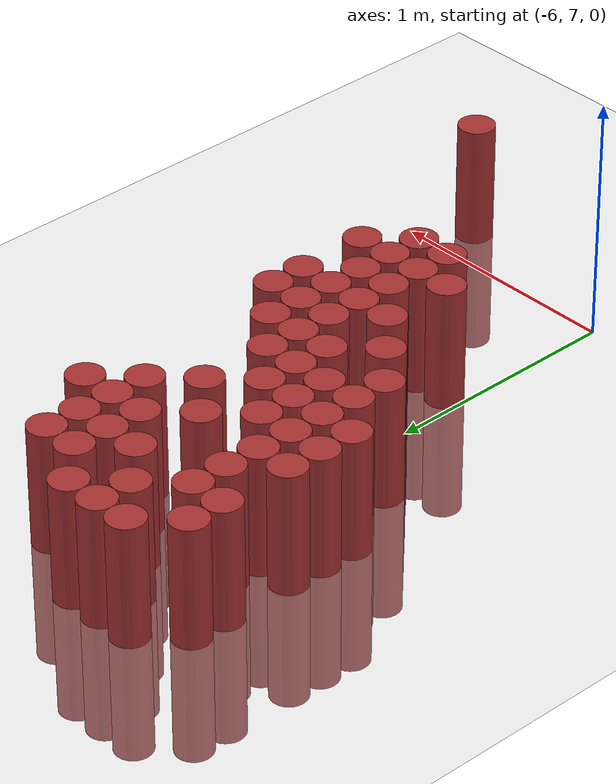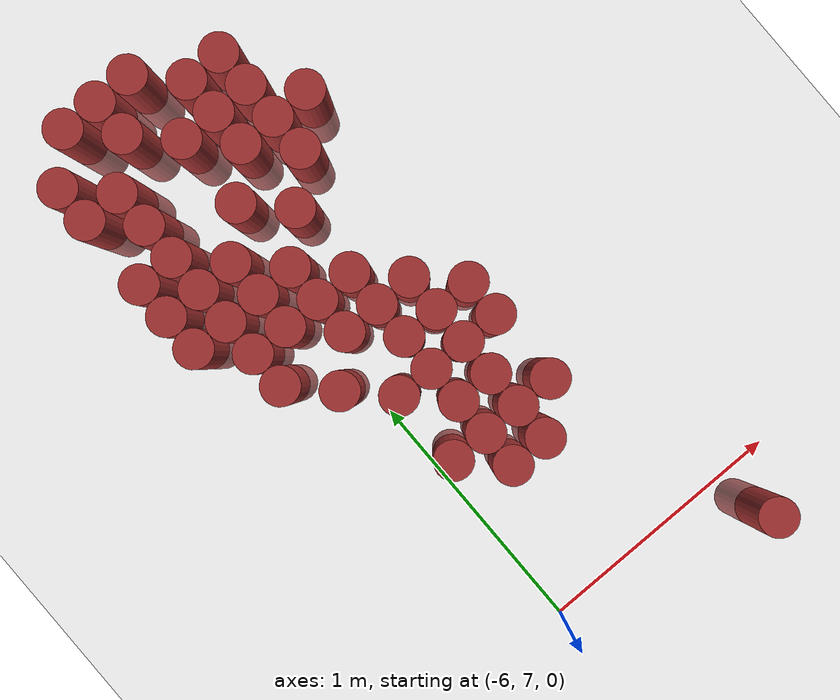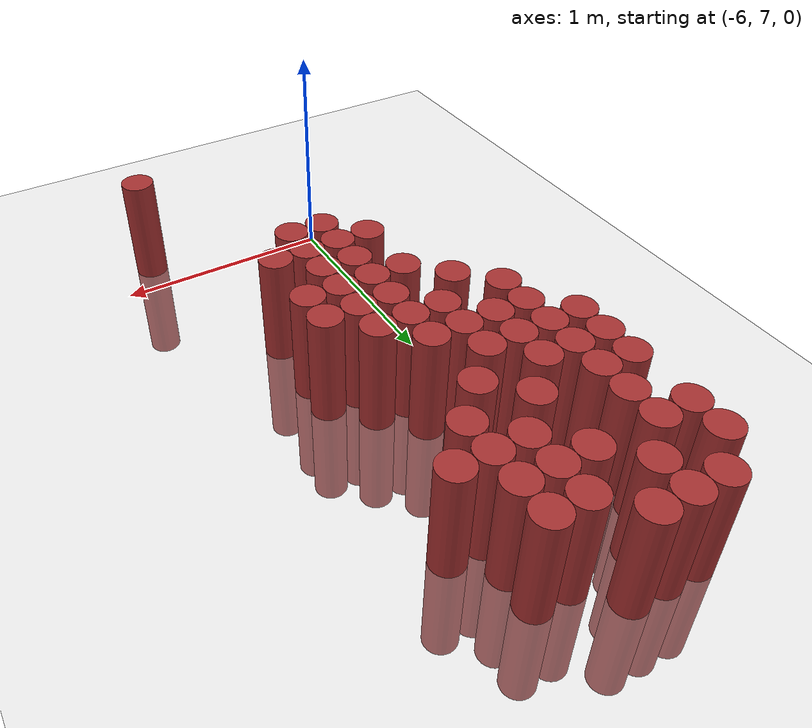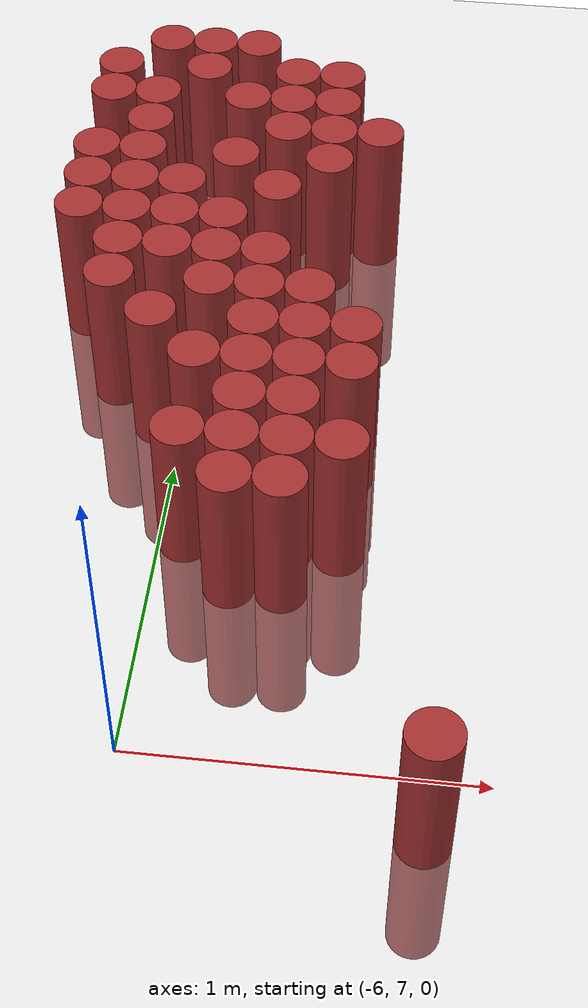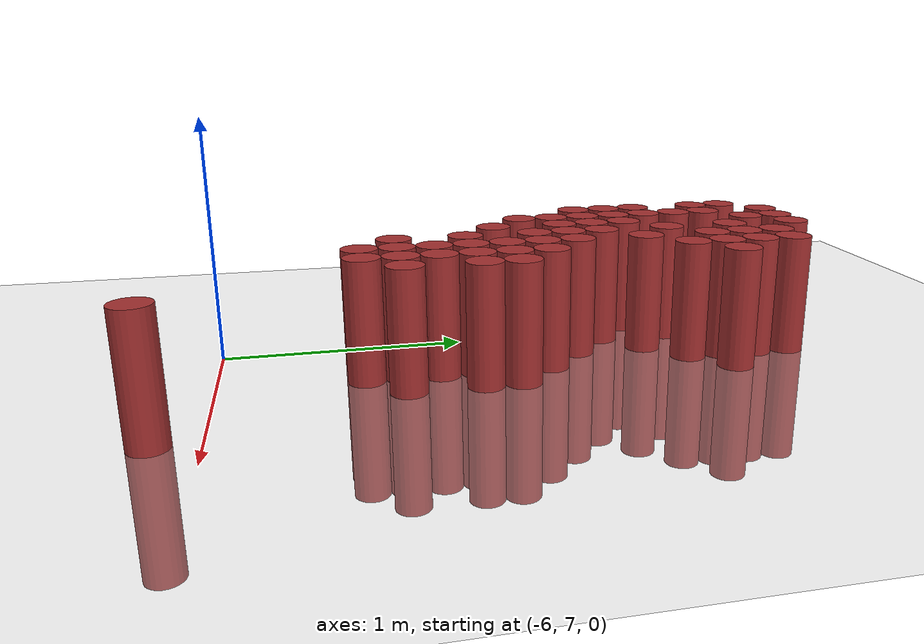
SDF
<sdf version="1.6">
 <world name="default">
  <model name="ground_plane">
   <static>1</static>
   <link name="link">
    <collision name="collision">
     <geometry><plane><normal>0 0 1</normal><size>100 100</size></plane></geometry>
     <surface><friction><ode><mu>100</mu><mu2>50</mu2></ode></friction></surface>
    </collision>
    <visual name="visual">
     <cast_shadows>0</cast_shadows>
     <geometry><plane><normal>0 0 1</normal><size>100 100</size></plane></geometry>
     <material>
      <script><uri>file://media/materials/scripts/gazebo.material</uri><name>Gazebo/Grey</name></script>
     </material>
    </visual>
   </link>
  </model>
  <model name="unit_cylinder_217">
   <static>1</static>
   <pose>-6.375000 8.625000 0.000000 0.000000 0.000000 0.000000</pose>
   <link name="link">
    <inertial>
     <mass>1</mass>
     <inertia><ixx>0.145833</ixx><ixy>0</ixy><ixz>0</ixz><iyy>0.145833</iyy><iyz>0</iyz><izz>0.125</izz></inertia>
    </inertial>
    <collision name="collision">
     <geometry><cylinder><radius>0.075000</radius><length>1</length></cylinder></geometry>
    </collision>
    <visual name="visual">
     <geometry><cylinder><radius>0.075000</radius><length>1</length></cylinder></geometry>
     <material>
      <ambient>0.648000 0.192000 0.192000 1</ambient>
      <diffuse>0.648000 0.192000 0.192000 1</diffuse>
     </material>
     <material>
      <script><name>Gazebo/Grey</name><uri>file://media/materials/scripts/gazebo.material</uri></script>
     </material>
    </visual>
   </link>
  </model>
  <model name="unit_cylinder_218">
   <static>1</static>
   <pose>-6.375000 8.775000 0.000000 0.000000 0.000000 0.000000</pose>
   <link name="link">
    <inertial>
     <mass>1</mass>
     <inertia><ixx>0.145833</ixx><ixy>0</ixy><ixz>0</ixz><iyy>0.145833</iyy><iyz>0</iyz><izz>0.125</izz></inertia>
    </inertial>
    <collision name="collision">
     <geometry><cylinder><radius>0.075000</radius><length>1</length></cylinder></geometry>
    </collision>
    <visual name="visual">
     <geometry><cylinder><radius>0.075000</radius><length>1</length></cylinder></geometry>
     <material>
      <ambient>0.648000 0.192000 0.192000 1</ambient>
      <diffuse>0.648000 0.192000 0.192000 1</diffuse>
     </material>
     <material>
      <script><name>Gazebo/Grey</name><uri>file://media/materials/scripts/gazebo.material</uri></script>
     </material>
    </visual>
   </link>
  </model>
  <model name="unit_cylinder_219">
   <static>1</static>
   <pose>-6.375000 8.925000 0.000000 0.000000 0.000000 0.000000</pose>
   <link name="link">
    <inertial>
     <mass>1</mass>
     <inertia><ixx>0.145833</ixx><ixy>0</ixy><ixz>0</ixz><iyy>0.145833</iyy><iyz>0</iyz><izz>0.125</izz></inertia>
    </inertial>
    <collision name="collision">
     <geometry><cylinder><radius>0.075000</radius><length>1</length></cylinder></geometry>
    </collision>
    <visual name="visual">
     <geometry><cylinder><radius>0.075000</radius><length>1</length></cylinder></geometry>
     <material>
      <ambient>0.648000 0.192000 0.192000 1</ambient>
      <diffuse>0.648000 0.192000 0.192000 1</diffuse>
     </material>
     <material>
      <script><name>Gazebo/Grey</name><uri>file://media/materials/scripts/gazebo.material</uri></script>
     </material>
    </visual>
   </link>
  </model>
  <model name="unit_cylinder_220">
   <static>1</static>
   <pose>-6.375000 9.225000 0.000000 0.000000 0.000000 0.000000</pose>
   <link name="link">
    <inertial>
     <mass>1</mass>
     <inertia><ixx>0.145833</ixx><ixy>0</ixy><ixz>0</ixz><iyy>0.145833</iyy><iyz>0</iyz><izz>0.125</izz></inertia>
    </inertial>
    <collision name="collision">
     <geometry><cylinder><radius>0.075000</radius><length>1</length></cylinder></geometry>
    </collision>
    <visual name="visual">
     <geometry><cylinder><radius>0.075000</radius><length>1</length></cylinder></geometry>
     <material>
      <ambient>0.648000 0.192000 0.192000 1</ambient>
      <diffuse>0.648000 0.192000 0.192000 1</diffuse>
     </material>
     <material>
      <script><name>Gazebo/Grey</name><uri>file://media/materials/scripts/gazebo.material</uri></script>
     </material>
    </visual>
   </link>
  </model>
  <model name="unit_cylinder_221">
   <static>1</static>
   <pose>-6.375000 9.375000 0.000000 0.000000 0.000000 0.000000</pose>
   <link name="link">
    <inertial>
     <mass>1</mass>
     <inertia><ixx>0.145833</ixx><ixy>0</ixy><ixz>0</ixz><iyy>0.145833</iyy><iyz>0</iyz><izz>0.125</izz></inertia>
    </inertial>
    <collision name="collision">
     <geometry><cylinder><radius>0.075000</radius><length>1</length></cylinder></geometry>
    </collision>
    <visual name="visual">
     <geometry><cylinder><radius>0.075000</radius><length>1</length></cylinder></geometry>
     <material>
      <ambient>0.648000 0.192000 0.192000 1</ambient>
      <diffuse>0.648000 0.192000 0.192000 1</diffuse>
     </material>
     <material>
      <script><name>Gazebo/Grey</name><uri>file://media/materials/scripts/gazebo.material</uri></script>
     </material>
    </visual>
   </link>
  </model>
  <model name="unit_cylinder_224">
   <static>1</static>
   <pose>-6.225000 8.325000 0.000000 0.000000 0.000000 0.000000</pose>
   <link name="link">
    <inertial>
     <mass>1</mass>
     <inertia><ixx>0.145833</ixx><ixy>0</ixy><ixz>0</ixz><iyy>0.145833</iyy><iyz>0</iyz><izz>0.125</izz></inertia>
    </inertial>
    <collision name="collision">
     <geometry><cylinder><radius>0.075000</radius><length>1</length></cylinder></geometry>
    </collision>
    <visual name="visual">
     <geometry><cylinder><radius>0.075000</radius><length>1</length></cylinder></geometry>
     <material>
      <ambient>0.648000 0.192000 0.192000 1</ambient>
      <diffuse>0.648000 0.192000 0.192000 1</diffuse>
     </material>
     <material>
      <script><name>Gazebo/Grey</name><uri>file://media/materials/scripts/gazebo.material</uri></script>
     </material>
    </visual>
   </link>
  </model>
  <model name="unit_cylinder_225">
   <static>1</static>
   <pose>-6.225000 8.475000 0.000000 0.000000 0.000000 0.000000</pose>
   <link name="link">
    <inertial>
     <mass>1</mass>
     <inertia><ixx>0.145833</ixx><ixy>0</ixy><ixz>0</ixz><iyy>0.145833</iyy><iyz>0</iyz><izz>0.125</izz></inertia>
    </inertial>
    <collision name="collision">
     <geometry><cylinder><radius>0.075000</radius><length>1</length></cylinder></geometry>
    </collision>
    <visual name="visual">
     <geometry><cylinder><radius>0.075000</radius><length>1</length></cylinder></geometry>
     <material>
      <ambient>0.648000 0.192000 0.192000 1</ambient>
      <diffuse>0.648000 0.192000 0.192000 1</diffuse>
     </material>
     <material>
      <script><name>Gazebo/Grey</name><uri>file://media/materials/scripts/gazebo.material</uri></script>
     </material>
    </visual>
   </link>
  </model>
  <model name="unit_cylinder_226">
   <static>1</static>
   <pose>-6.225000 8.625000 0.000000 0.000000 0.000000 0.000000</pose>
   <link name="link">
    <inertial>
     <mass>1</mass>
     <inertia><ixx>0.145833</ixx><ixy>0</ixy><ixz>0</ixz><iyy>0.145833</iyy><iyz>0</iyz><izz>0.125</izz></inertia>
    </inertial>
    <collision name="collision">
     <geometry><cylinder><radius>0.075000</radius><length>1</length></cylinder></geometry>
    </collision>
    <visual name="visual">
     <geometry><cylinder><radius>0.075000</radius><length>1</length></cylinder></geometry>
     <material>
      <ambient>0.648000 0.192000 0.192000 1</ambient>
      <diffuse>0.648000 0.192000 0.192000 1</diffuse>
     </material>
     <material>
      <script><name>Gazebo/Grey</name><uri>file://media/materials/scripts/gazebo.material</uri></script>
     </material>
    </visual>
   </link>
  </model>
  <model name="unit_cylinder_227">
   <static>1</static>
   <pose>-6.225000 8.775000 0.000000 0.000000 0.000000 0.000000</pose>
   <link name="link">
    <inertial>
     <mass>1</mass>
     <inertia><ixx>0.145833</ixx><ixy>0</ixy><ixz>0</ixz><iyy>0.145833</iyy><iyz>0</iyz><izz>0.125</izz></inertia>
    </inertial>
    <collision name="collision">
     <geometry><cylinder><radius>0.075000</radius><length>1</length></cylinder></geometry>
    </collision>
    <visual name="visual">
     <geometry><cylinder><radius>0.075000</radius><length>1</length></cylinder></geometry>
     <material>
      <ambient>0.648000 0.192000 0.192000 1</ambient>
      <diffuse>0.648000 0.192000 0.192000 1</diffuse>
     </material>
     <material>
      <script><name>Gazebo/Grey</name><uri>file://media/materials/scripts/gazebo.material</uri></script>
     </material>
    </visual>
   </link>
  </model>
  <model name="unit_cylinder_228">
   <static>1</static>
   <pose>-6.225000 8.925000 0.000000 0.000000 0.000000 0.000000</pose>
   <link name="link">
    <inertial>
     <mass>1</mass>
     <inertia><ixx>0.145833</ixx><ixy>0</ixy><ixz>0</ixz><iyy>0.145833</iyy><iyz>0</iyz><izz>0.125</izz></inertia>
    </inertial>
    <collision name="collision">
     <geometry><cylinder><radius>0.075000</radius><length>1</length></cylinder></geometry>
    </collision>
    <visual name="visual">
     <geometry><cylinder><radius>0.075000</radius><length>1</length></cylinder></geometry>
     <material>
      <ambient>0.648000 0.192000 0.192000 1</ambient>
      <diffuse>0.648000 0.192000 0.192000 1</diffuse>
     </material>
     <material>
      <script><name>Gazebo/Grey</name><uri>file://media/materials/scripts/gazebo.material</uri></script>
     </material>
    </visual>
   </link>
  </model>
  <model name="unit_cylinder_229">
   <static>1</static>
   <pose>-6.225000 9.075000 0.000000 0.000000 0.000000 0.000000</pose>
   <link name="link">
    <inertial>
     <mass>1</mass>
     <inertia><ixx>0.145833</ixx><ixy>0</ixy><ixz>0</ixz><iyy>0.145833</iyy><iyz>0</iyz><izz>0.125</izz></inertia>
    </inertial>
    <collision name="collision">
     <geometry><cylinder><radius>0.075000</radius><length>1</length></cylinder></geometry>
    </collision>
    <visual name="visual">
     <geometry><cylinder><radius>0.075000</radius><length>1</length></cylinder></geometry>
     <material>
      <ambient>0.648000 0.192000 0.192000 1</ambient>
      <diffuse>0.648000 0.192000 0.192000 1</diffuse>
     </material>
     <material>
      <script><name>Gazebo/Grey</name><uri>file://media/materials/scripts/gazebo.material</uri></script>
     </material>
    </visual>
   </link>
  </model>
  <model name="unit_cylinder_230">
   <static>1</static>
   <pose>-6.225000 9.225000 0.000000 0.000000 0.000000 0.000000</pose>
   <link name="link">
    <inertial>
     <mass>1</mass>
     <inertia><ixx>0.145833</ixx><ixy>0</ixy><ixz>0</ixz><iyy>0.145833</iyy><iyz>0</iyz><izz>0.125</izz></inertia>
    </inertial>
    <collision name="collision">
     <geometry><cylinder><radius>0.075000</radius><length>1</length></cylinder></geometry>
    </collision>
    <visual name="visual">
     <geometry><cylinder><radius>0.075000</radius><length>1</length></cylinder></geometry>
     <material>
      <ambient>0.648000 0.192000 0.192000 1</ambient>
      <diffuse>0.648000 0.192000 0.192000 1</diffuse>
     </material>
     <material>
      <script><name>Gazebo/Grey</name><uri>file://media/materials/scripts/gazebo.material</uri></script>
     </material>
    </visual>
   </link>
  </model>
  <model name="unit_cylinder_231">
   <static>1</static>
   <pose>-6.225000 9.525000 0.000000 0.000000 0.000000 0.000000</pose>
   <link name="link">
    <inertial>
     <mass>1</mass>
     <inertia><ixx>0.145833</ixx><ixy>0</ixy><ixz>0</ixz><iyy>0.145833</iyy><iyz>0</iyz><izz>0.125</izz></inertia>
    </inertial>
    <collision name="collision">
     <geometry><cylinder><radius>0.075000</radius><length>1</length></cylinder></geometry>
    </collision>
    <visual name="visual">
     <geometry><cylinder><radius>0.075000</radius><length>1</length></cylinder></geometry>
     <material>
      <ambient>0.648000 0.192000 0.192000 1</ambient>
      <diffuse>0.648000 0.192000 0.192000 1</diffuse>
     </material>
     <material>
      <script><name>Gazebo/Grey</name><uri>file://media/materials/scripts/gazebo.material</uri></script>
     </material>
    </visual>
   </link>
  </model>
  <model name="unit_cylinder_234">
   <static>1</static>
   <pose>-6.075000 8.175000 0.000000 0.000000 0.000000 0.000000</pose>
   <link name="link">
    <inertial>
     <mass>1</mass>
     <inertia><ixx>0.145833</ixx><ixy>0</ixy><ixz>0</ixz><iyy>0.145833</iyy><iyz>0</iyz><izz>0.125</izz></inertia>
    </inertial>
    <collision name="collision">
     <geometry><cylinder><radius>0.075000</radius><length>1</length></cylinder></geometry>
    </collision>
    <visual name="visual">
     <geometry><cylinder><radius>0.075000</radius><length>1</length></cylinder></geometry>
     <material>
      <ambient>0.648000 0.192000 0.192000 1</ambient>
      <diffuse>0.648000 0.192000 0.192000 1</diffuse>
     </material>
     <material>
      <script><name>Gazebo/Grey</name><uri>file://media/materials/scripts/gazebo.material</uri></script>
     </material>
    </visual>
   </link>
  </model>
  <model name="unit_cylinder_235">
   <static>1</static>
   <pose>-6.075000 8.475000 0.000000 0.000000 0.000000 0.000000</pose>
   <link name="link">
    <inertial>
     <mass>1</mass>
     <inertia><ixx>0.145833</ixx><ixy>0</ixy><ixz>0</ixz><iyy>0.145833</iyy><iyz>0</iyz><izz>0.125</izz></inertia>
    </inertial>
    <collision name="collision">
     <geometry><cylinder><radius>0.075000</radius><length>1</length></cylinder></geometry>
    </collision>
    <visual name="visual">
     <geometry><cylinder><radius>0.075000</radius><length>1</length></cylinder></geometry>
     <material>
      <ambient>0.648000 0.192000 0.192000 1</ambient>
      <diffuse>0.648000 0.192000 0.192000 1</diffuse>
     </material>
     <material>
      <script><name>Gazebo/Grey</name><uri>file://media/materials/scripts/gazebo.material</uri></script>
     </material>
    </visual>
   </link>
  </model>
  <model name="unit_cylinder_236">
   <static>1</static>
   <pose>-6.075000 8.625000 0.000000 0.000000 0.000000 0.000000</pose>
   <link name="link">
    <inertial>
     <mass>1</mass>
     <inertia><ixx>0.145833</ixx><ixy>0</ixy><ixz>0</ixz><iyy>0.145833</iyy><iyz>0</iyz><izz>0.125</izz></inertia>
    </inertial>
    <collision name="collision">
     <geometry><cylinder><radius>0.075000</radius><length>1</length></cylinder></geometry>
    </collision>
    <visual name="visual">
     <geometry><cylinder><radius>0.075000</radius><length>1</length></cylinder></geometry>
     <material>
      <ambient>0.648000 0.192000 0.192000 1</ambient>
      <diffuse>0.648000 0.192000 0.192000 1</diffuse>
     </material>
     <material>
      <script><name>Gazebo/Grey</name><uri>file://media/materials/scripts/gazebo.material</uri></script>
     </material>
    </visual>
   </link>
  </model>
  <model name="unit_cylinder_237">
   <static>1</static>
   <pose>-6.075000 8.775000 0.000000 0.000000 0.000000 0.000000</pose>
   <link name="link">
    <inertial>
     <mass>1</mass>
     <inertia><ixx>0.145833</ixx><ixy>0</ixy><ixz>0</ixz><iyy>0.145833</iyy><iyz>0</iyz><izz>0.125</izz></inertia>
    </inertial>
    <collision name="collision">
     <geometry><cylinder><radius>0.075000</radius><length>1</length></cylinder></geometry>
    </collision>
    <visual name="visual">
     <geometry><cylinder><radius>0.075000</radius><length>1</length></cylinder></geometry>
     <material>
      <ambient>0.648000 0.192000 0.192000 1</ambient>
      <diffuse>0.648000 0.192000 0.192000 1</diffuse>
     </material>
     <material>
      <script><name>Gazebo/Grey</name><uri>file://media/materials/scripts/gazebo.material</uri></script>
     </material>
    </visual>
   </link>
  </model>
  <model name="unit_cylinder_238">
   <static>1</static>
   <pose>-6.075000 9.375000 0.000000 0.000000 0.000000 0.000000</pose>
   <link name="link">
    <inertial>
     <mass>1</mass>
     <inertia><ixx>0.145833</ixx><ixy>0</ixy><ixz>0</ixz><iyy>0.145833</iyy><iyz>0</iyz><izz>0.125</izz></inertia>
    </inertial>
    <collision name="collision">
     <geometry><cylinder><radius>0.075000</radius><length>1</length></cylinder></geometry>
    </collision>
    <visual name="visual">
     <geometry><cylinder><radius>0.075000</radius><length>1</length></cylinder></geometry>
     <material>
      <ambient>0.648000 0.192000 0.192000 1</ambient>
      <diffuse>0.648000 0.192000 0.192000 1</diffuse>
     </material>
     <material>
      <script><name>Gazebo/Grey</name><uri>file://media/materials/scripts/gazebo.material</uri></script>
     </material>
    </visual>
   </link>
  </model>
  <model name="unit_cylinder_239">
   <static>1</static>
   <pose>-6.075000 9.525000 0.000000 0.000000 0.000000 0.000000</pose>
   <link name="link">
    <inertial>
     <mass>1</mass>
     <inertia><ixx>0.145833</ixx><ixy>0</ixy><ixz>0</ixz><iyy>0.145833</iyy><iyz>0</iyz><izz>0.125</izz></inertia>
    </inertial>
    <collision name="collision">
     <geometry><cylinder><radius>0.075000</radius><length>1</length></cylinder></geometry>
    </collision>
    <visual name="visual">
     <geometry><cylinder><radius>0.075000</radius><length>1</length></cylinder></geometry>
     <material>
      <ambient>0.648000 0.192000 0.192000 1</ambient>
      <diffuse>0.648000 0.192000 0.192000 1</diffuse>
     </material>
     <material>
      <script><name>Gazebo/Grey</name><uri>file://media/materials/scripts/gazebo.material</uri></script>
     </material>
    </visual>
   </link>
  </model>
  <model name="unit_cylinder_242">
   <static>1</static>
   <pose>-5.925000 7.725000 0.000000 0.000000 0.000000 0.000000</pose>
   <link name="link">
    <inertial>
     <mass>1</mass>
     <inertia><ixx>0.145833</ixx><ixy>0</ixy><ixz>0</ixz><iyy>0.145833</iyy><iyz>0</iyz><izz>0.125</izz></inertia>
    </inertial>
    <collision name="collision">
     <geometry><cylinder><radius>0.075000</radius><length>1</length></cylinder></geometry>
    </collision>
    <visual name="visual">
     <geometry><cylinder><radius>0.075000</radius><length>1</length></cylinder></geometry>
     <material>
      <ambient>0.648000 0.192000 0.192000 1</ambient>
      <diffuse>0.648000 0.192000 0.192000 1</diffuse>
     </material>
     <material>
      <script><name>Gazebo/Grey</name><uri>file://media/materials/scripts/gazebo.material</uri></script>
     </material>
    </visual>
   </link>
  </model>
  <model name="unit_cylinder_243">
   <static>1</static>
   <pose>-5.925000 8.025000 0.000000 0.000000 0.000000 0.000000</pose>
   <link name="link">
    <inertial>
     <mass>1</mass>
     <inertia><ixx>0.145833</ixx><ixy>0</ixy><ixz>0</ixz><iyy>0.145833</iyy><iyz>0</iyz><izz>0.125</izz></inertia>
    </inertial>
    <collision name="collision">
     <geometry><cylinder><radius>0.075000</radius><length>1</length></cylinder></geometry>
    </collision>
    <visual name="visual">
     <geometry><cylinder><radius>0.075000</radius><length>1</length></cylinder></geometry>
     <material>
      <ambient>0.648000 0.192000 0.192000 1</ambient>
      <diffuse>0.648000 0.192000 0.192000 1</diffuse>
     </material>
     <material>
      <script><name>Gazebo/Grey</name><uri>file://media/materials/scripts/gazebo.material</uri></script>
     </material>
    </visual>
   </link>
  </model>
  <model name="unit_cylinder_244">
   <static>1</static>
   <pose>-5.925000 8.325000 0.000000 0.000000 0.000000 0.000000</pose>
   <link name="link">
    <inertial>
     <mass>1</mass>
     <inertia><ixx>0.145833</ixx><ixy>0</ixy><ixz>0</ixz><iyy>0.145833</iyy><iyz>0</iyz><izz>0.125</izz></inertia>
    </inertial>
    <collision name="collision">
     <geometry><cylinder><radius>0.075000</radius><length>1</length></cylinder></geometry>
    </collision>
    <visual name="visual">
     <geometry><cylinder><radius>0.075000</radius><length>1</length></cylinder></geometry>
     <material>
      <ambient>0.648000 0.192000 0.192000 1</ambient>
      <diffuse>0.648000 0.192000 0.192000 1</diffuse>
     </material>
     <material>
      <script><name>Gazebo/Grey</name><uri>file://media/materials/scripts/gazebo.material</uri></script>
     </material>
    </visual>
   </link>
  </model>
  <model name="unit_cylinder_245">
   <static>1</static>
   <pose>-5.925000 8.475000 0.000000 0.000000 0.000000 0.000000</pose>
   <link name="link">
    <inertial>
     <mass>1</mass>
     <inertia><ixx>0.145833</ixx><ixy>0</ixy><ixz>0</ixz><iyy>0.145833</iyy><iyz>0</iyz><izz>0.125</izz></inertia>
    </inertial>
    <collision name="collision">
     <geometry><cylinder><radius>0.075000</radius><length>1</length></cylinder></geometry>
    </collision>
    <visual name="visual">
     <geometry><cylinder><radius>0.075000</radius><length>1</length></cylinder></geometry>
     <material>
      <ambient>0.648000 0.192000 0.192000 1</ambient>
      <diffuse>0.648000 0.192000 0.192000 1</diffuse>
     </material>
     <material>
      <script><name>Gazebo/Grey</name><uri>file://media/materials/scripts/gazebo.material</uri></script>
     </material>
    </visual>
   </link>
  </model>
  <model name="unit_cylinder_246">
   <static>1</static>
   <pose>-5.925000 8.625000 0.000000 0.000000 0.000000 0.000000</pose>
   <link name="link">
    <inertial>
     <mass>1</mass>
     <inertia><ixx>0.145833</ixx><ixy>0</ixy><ixz>0</ixz><iyy>0.145833</iyy><iyz>0</iyz><izz>0.125</izz></inertia>
    </inertial>
    <collision name="collision">
     <geometry><cylinder><radius>0.075000</radius><length>1</length></cylinder></geometry>
    </collision>
    <visual name="visual">
     <geometry><cylinder><radius>0.075000</radius><length>1</length></cylinder></geometry>
     <material>
      <ambient>0.648000 0.192000 0.192000 1</ambient>
      <diffuse>0.648000 0.192000 0.192000 1</diffuse>
     </material>
     <material>
      <script><name>Gazebo/Grey</name><uri>file://media/materials/scripts/gazebo.material</uri></script>
     </material>
    </visual>
   </link>
  </model>
  <model name="unit_cylinder_247">
   <static>1</static>
   <pose>-5.925000 8.925000 0.000000 0.000000 0.000000 0.000000</pose>
   <link name="link">
    <inertial>
     <mass>1</mass>
     <inertia><ixx>0.145833</ixx><ixy>0</ixy><ixz>0</ixz><iyy>0.145833</iyy><iyz>0</iyz><izz>0.125</izz></inertia>
    </inertial>
    <collision name="collision">
     <geometry><cylinder><radius>0.075000</radius><length>1</length></cylinder></geometry>
    </collision>
    <visual name="visual">
     <geometry><cylinder><radius>0.075000</radius><length>1</length></cylinder></geometry>
     <material>
      <ambient>0.648000 0.192000 0.192000 1</ambient>
      <diffuse>0.648000 0.192000 0.192000 1</diffuse>
     </material>
     <material>
      <script><name>Gazebo/Grey</name><uri>file://media/materials/scripts/gazebo.material</uri></script>
     </material>
    </visual>
   </link>
  </model>
  <model name="unit_cylinder_248">
   <static>1</static>
   <pose>-5.925000 9.225000 0.000000 0.000000 0.000000 0.000000</pose>
   <link name="link">
    <inertial>
     <mass>1</mass>
     <inertia><ixx>0.145833</ixx><ixy>0</ixy><ixz>0</ixz><iyy>0.145833</iyy><iyz>0</iyz><izz>0.125</izz></inertia>
    </inertial>
    <collision name="collision">
     <geometry><cylinder><radius>0.075000</radius><length>1</length></cylinder></geometry>
    </collision>
    <visual name="visual">
     <geometry><cylinder><radius>0.075000</radius><length>1</length></cylinder></geometry>
     <material>
      <ambient>0.648000 0.192000 0.192000 1</ambient>
      <diffuse>0.648000 0.192000 0.192000 1</diffuse>
     </material>
     <material>
      <script><name>Gazebo/Grey</name><uri>file://media/materials/scripts/gazebo.material</uri></script>
     </material>
    </visual>
   </link>
  </model>
  <model name="unit_cylinder_249">
   <static>1</static>
   <pose>-5.925000 9.525000 0.000000 0.000000 0.000000 0.000000</pose>
   <link name="link">
    <inertial>
     <mass>1</mass>
     <inertia><ixx>0.145833</ixx><ixy>0</ixy><ixz>0</ixz><iyy>0.145833</iyy><iyz>0</iyz><izz>0.125</izz></inertia>
    </inertial>
    <collision name="collision">
     <geometry><cylinder><radius>0.075000</radius><length>1</length></cylinder></geometry>
    </collision>
    <visual name="visual">
     <geometry><cylinder><radius>0.075000</radius><length>1</length></cylinder></geometry>
     <material>
      <ambient>0.648000 0.192000 0.192000 1</ambient>
      <diffuse>0.648000 0.192000 0.192000 1</diffuse>
     </material>
     <material>
      <script><name>Gazebo/Grey</name><uri>file://media/materials/scripts/gazebo.material</uri></script>
     </material>
    </visual>
   </link>
  </model>
  <model name="unit_cylinder_252">
   <static>1</static>
   <pose>-5.775000 7.575000 0.000000 0.000000 0.000000 0.000000</pose>
   <link name="link">
    <inertial>
     <mass>1</mass>
     <inertia><ixx>0.145833</ixx><ixy>0</ixy><ixz>0</ixz><iyy>0.145833</iyy><iyz>0</iyz><izz>0.125</izz></inertia>
    </inertial>
    <collision name="collision">
     <geometry><cylinder><radius>0.075000</radius><length>1</length></cylinder></geometry>
    </collision>
    <visual name="visual">
     <geometry><cylinder><radius>0.075000</radius><length>1</length></cylinder></geometry>
     <material>
      <ambient>0.648000 0.192000 0.192000 1</ambient>
      <diffuse>0.648000 0.192000 0.192000 1</diffuse>
     </material>
     <material>
      <script><name>Gazebo/Grey</name><uri>file://media/materials/scripts/gazebo.material</uri></script>
     </material>
    </visual>
   </link>
  </model>
  <model name="unit_cylinder_253">
   <static>1</static>
   <pose>-5.775000 7.725000 0.000000 0.000000 0.000000 0.000000</pose>
   <link name="link">
    <inertial>
     <mass>1</mass>
     <inertia><ixx>0.145833</ixx><ixy>0</ixy><ixz>0</ixz><iyy>0.145833</iyy><iyz>0</iyz><izz>0.125</izz></inertia>
    </inertial>
    <collision name="collision">
     <geometry><cylinder><radius>0.075000</radius><length>1</length></cylinder></geometry>
    </collision>
    <visual name="visual">
     <geometry><cylinder><radius>0.075000</radius><length>1</length></cylinder></geometry>
     <material>
      <ambient>0.648000 0.192000 0.192000 1</ambient>
      <diffuse>0.648000 0.192000 0.192000 1</diffuse>
     </material>
     <material>
      <script><name>Gazebo/Grey</name><uri>file://media/materials/scripts/gazebo.material</uri></script>
     </material>
    </visual>
   </link>
  </model>
  <model name="unit_cylinder_254">
   <static>1</static>
   <pose>-5.775000 7.875000 0.000000 0.000000 0.000000 0.000000</pose>
   <link name="link">
    <inertial>
     <mass>1</mass>
     <inertia><ixx>0.145833</ixx><ixy>0</ixy><ixz>0</ixz><iyy>0.145833</iyy><iyz>0</iyz><izz>0.125</izz></inertia>
    </inertial>
    <collision name="collision">
     <geometry><cylinder><radius>0.075000</radius><length>1</length></cylinder></geometry>
    </collision>
    <visual name="visual">
     <geometry><cylinder><radius>0.075000</radius><length>1</length></cylinder></geometry>
     <material>
      <ambient>0.648000 0.192000 0.192000 1</ambient>
      <diffuse>0.648000 0.192000 0.192000 1</diffuse>
     </material>
     <material>
      <script><name>Gazebo/Grey</name><uri>file://media/materials/scripts/gazebo.material</uri></script>
     </material>
    </visual>
   </link>
  </model>
  <model name="unit_cylinder_255">
   <static>1</static>
   <pose>-5.775000 8.025000 0.000000 0.000000 0.000000 0.000000</pose>
   <link name="link">
    <inertial>
     <mass>1</mass>
     <inertia><ixx>0.145833</ixx><ixy>0</ixy><ixz>0</ixz><iyy>0.145833</iyy><iyz>0</iyz><izz>0.125</izz></inertia>
    </inertial>
    <collision name="collision">
     <geometry><cylinder><radius>0.075000</radius><length>1</length></cylinder></geometry>
    </collision>
    <visual name="visual">
     <geometry><cylinder><radius>0.075000</radius><length>1</length></cylinder></geometry>
     <material>
      <ambient>0.648000 0.192000 0.192000 1</ambient>
      <diffuse>0.648000 0.192000 0.192000 1</diffuse>
     </material>
     <material>
      <script><name>Gazebo/Grey</name><uri>file://media/materials/scripts/gazebo.material</uri></script>
     </material>
    </visual>
   </link>
  </model>
  <model name="unit_cylinder_256">
   <static>1</static>
   <pose>-5.775000 8.175000 0.000000 0.000000 0.000000 0.000000</pose>
   <link name="link">
    <inertial>
     <mass>1</mass>
     <inertia><ixx>0.145833</ixx><ixy>0</ixy><ixz>0</ixz><iyy>0.145833</iyy><iyz>0</iyz><izz>0.125</izz></inertia>
    </inertial>
    <collision name="collision">
     <geometry><cylinder><radius>0.075000</radius><length>1</length></cylinder></geometry>
    </collision>
    <visual name="visual">
     <geometry><cylinder><radius>0.075000</radius><length>1</length></cylinder></geometry>
     <material>
      <ambient>0.648000 0.192000 0.192000 1</ambient>
      <diffuse>0.648000 0.192000 0.192000 1</diffuse>
     </material>
     <material>
      <script><name>Gazebo/Grey</name><uri>file://media/materials/scripts/gazebo.material</uri></script>
     </material>
    </visual>
   </link>
  </model>
  <model name="unit_cylinder_257">
   <static>1</static>
   <pose>-5.775000 8.325000 0.000000 0.000000 0.000000 0.000000</pose>
   <link name="link">
    <inertial>
     <mass>1</mass>
     <inertia><ixx>0.145833</ixx><ixy>0</ixy><ixz>0</ixz><iyy>0.145833</iyy><iyz>0</iyz><izz>0.125</izz></inertia>
    </inertial>
    <collision name="collision">
     <geometry><cylinder><radius>0.075000</radius><length>1</length></cylinder></geometry>
    </collision>
    <visual name="visual">
     <geometry><cylinder><radius>0.075000</radius><length>1</length></cylinder></geometry>
     <material>
      <ambient>0.648000 0.192000 0.192000 1</ambient>
      <diffuse>0.648000 0.192000 0.192000 1</diffuse>
     </material>
     <material>
      <script><name>Gazebo/Grey</name><uri>file://media/materials/scripts/gazebo.material</uri></script>
     </material>
    </visual>
   </link>
  </model>
  <model name="unit_cylinder_258">
   <static>1</static>
   <pose>-5.775000 8.475000 0.000000 0.000000 0.000000 0.000000</pose>
   <link name="link">
    <inertial>
     <mass>1</mass>
     <inertia><ixx>0.145833</ixx><ixy>0</ixy><ixz>0</ixz><iyy>0.145833</iyy><iyz>0</iyz><izz>0.125</izz></inertia>
    </inertial>
    <collision name="collision">
     <geometry><cylinder><radius>0.075000</radius><length>1</length></cylinder></geometry>
    </collision>
    <visual name="visual">
     <geometry><cylinder><radius>0.075000</radius><length>1</length></cylinder></geometry>
     <material>
      <ambient>0.648000 0.192000 0.192000 1</ambient>
      <diffuse>0.648000 0.192000 0.192000 1</diffuse>
     </material>
     <material>
      <script><name>Gazebo/Grey</name><uri>file://media/materials/scripts/gazebo.material</uri></script>
     </material>
    </visual>
   </link>
  </model>
  <model name="unit_cylinder_259">
   <static>1</static>
   <pose>-5.775000 8.775000 0.000000 0.000000 0.000000 0.000000</pose>
   <link name="link">
    <inertial>
     <mass>1</mass>
     <inertia><ixx>0.145833</ixx><ixy>0</ixy><ixz>0</ixz><iyy>0.145833</iyy><iyz>0</iyz><izz>0.125</izz></inertia>
    </inertial>
    <collision name="collision">
     <geometry><cylinder><radius>0.075000</radius><length>1</length></cylinder></geometry>
    </collision>
    <visual name="visual">
     <geometry><cylinder><radius>0.075000</radius><length>1</length></cylinder></geometry>
     <material>
      <ambient>0.648000 0.192000 0.192000 1</ambient>
      <diffuse>0.648000 0.192000 0.192000 1</diffuse>
     </material>
     <material>
      <script><name>Gazebo/Grey</name><uri>file://media/materials/scripts/gazebo.material</uri></script>
     </material>
    </visual>
   </link>
  </model>
  <model name="unit_cylinder_260">
   <static>1</static>
   <pose>-5.775000 9.075000 0.000000 0.000000 0.000000 0.000000</pose>
   <link name="link">
    <inertial>
     <mass>1</mass>
     <inertia><ixx>0.145833</ixx><ixy>0</ixy><ixz>0</ixz><iyy>0.145833</iyy><iyz>0</iyz><izz>0.125</izz></inertia>
    </inertial>
    <collision name="collision">
     <geometry><cylinder><radius>0.075000</radius><length>1</length></cylinder></geometry>
    </collision>
    <visual name="visual">
     <geometry><cylinder><radius>0.075000</radius><length>1</length></cylinder></geometry>
     <material>
      <ambient>0.648000 0.192000 0.192000 1</ambient>
      <diffuse>0.648000 0.192000 0.192000 1</diffuse>
     </material>
     <material>
      <script><name>Gazebo/Grey</name><uri>file://media/materials/scripts/gazebo.material</uri></script>
     </material>
    </visual>
   </link>
  </model>
  <model name="unit_cylinder_261">
   <static>1</static>
   <pose>-5.775000 9.225000 0.000000 0.000000 0.000000 0.000000</pose>
   <link name="link">
    <inertial>
     <mass>1</mass>
     <inertia><ixx>0.145833</ixx><ixy>0</ixy><ixz>0</ixz><iyy>0.145833</iyy><iyz>0</iyz><izz>0.125</izz></inertia>
    </inertial>
    <collision name="collision">
     <geometry><cylinder><radius>0.075000</radius><length>1</length></cylinder></geometry>
    </collision>
    <visual name="visual">
     <geometry><cylinder><radius>0.075000</radius><length>1</length></cylinder></geometry>
     <material>
      <ambient>0.648000 0.192000 0.192000 1</ambient>
      <diffuse>0.648000 0.192000 0.192000 1</diffuse>
     </material>
     <material>
      <script><name>Gazebo/Grey</name><uri>file://media/materials/scripts/gazebo.material</uri></script>
     </material>
    </visual>
   </link>
  </model>
  <model name="unit_cylinder_262">
   <static>1</static>
   <pose>-5.775000 9.375000 0.000000 0.000000 0.000000 0.000000</pose>
   <link name="link">
    <inertial>
     <mass>1</mass>
     <inertia><ixx>0.145833</ixx><ixy>0</ixy><ixz>0</ixz><iyy>0.145833</iyy><iyz>0</iyz><izz>0.125</izz></inertia>
    </inertial>
    <collision name="collision">
     <geometry><cylinder><radius>0.075000</radius><length>1</length></cylinder></geometry>
    </collision>
    <visual name="visual">
     <geometry><cylinder><radius>0.075000</radius><length>1</length></cylinder></geometry>
     <material>
      <ambient>0.648000 0.192000 0.192000 1</ambient>
      <diffuse>0.648000 0.192000 0.192000 1</diffuse>
     </material>
     <material>
      <script><name>Gazebo/Grey</name><uri>file://media/materials/scripts/gazebo.material</uri></script>
     </material>
    </visual>
   </link>
  </model>
  <model name="unit_cylinder_264">
   <static>1</static>
   <pose>-5.625000 7.575000 0.000000 0.000000 0.000000 0.000000</pose>
   <link name="link">
    <inertial>
     <mass>1</mass>
     <inertia><ixx>0.145833</ixx><ixy>0</ixy><ixz>0</ixz><iyy>0.145833</iyy><iyz>0</iyz><izz>0.125</izz></inertia>
    </inertial>
    <collision name="collision">
     <geometry><cylinder><radius>0.075000</radius><length>1</length></cylinder></geometry>
    </collision>
    <visual name="visual">
     <geometry><cylinder><radius>0.075000</radius><length>1</length></cylinder></geometry>
     <material>
      <ambient>0.648000 0.192000 0.192000 1</ambient>
      <diffuse>0.648000 0.192000 0.192000 1</diffuse>
     </material>
     <material>
      <script><name>Gazebo/Grey</name><uri>file://media/materials/scripts/gazebo.material</uri></script>
     </material>
    </visual>
   </link>
  </model>
  <model name="unit_cylinder_265">
   <static>1</static>
   <pose>-5.625000 7.725000 0.000000 0.000000 0.000000 0.000000</pose>
   <link name="link">
    <inertial>
     <mass>1</mass>
     <inertia><ixx>0.145833</ixx><ixy>0</ixy><ixz>0</ixz><iyy>0.145833</iyy><iyz>0</iyz><izz>0.125</izz></inertia>
    </inertial>
    <collision name="collision">
     <geometry><cylinder><radius>0.075000</radius><length>1</length></cylinder></geometry>
    </collision>
    <visual name="visual">
     <geometry><cylinder><radius>0.075000</radius><length>1</length></cylinder></geometry>
     <material>
      <ambient>0.648000 0.192000 0.192000 1</ambient>
      <diffuse>0.648000 0.192000 0.192000 1</diffuse>
     </material>
     <material>
      <script><name>Gazebo/Grey</name><uri>file://media/materials/scripts/gazebo.material</uri></script>
     </material>
    </visual>
   </link>
  </model>
  <model name="unit_cylinder_266">
   <static>1</static>
   <pose>-5.625000 7.875000 0.000000 0.000000 0.000000 0.000000</pose>
   <link name="link">
    <inertial>
     <mass>1</mass>
     <inertia><ixx>0.145833</ixx><ixy>0</ixy><ixz>0</ixz><iyy>0.145833</iyy><iyz>0</iyz><izz>0.125</izz></inertia>
    </inertial>
    <collision name="collision">
     <geometry><cylinder><radius>0.075000</radius><length>1</length></cylinder></geometry>
    </collision>
    <visual name="visual">
     <geometry><cylinder><radius>0.075000</radius><length>1</length></cylinder></geometry>
     <material>
      <ambient>0.648000 0.192000 0.192000 1</ambient>
      <diffuse>0.648000 0.192000 0.192000 1</diffuse>
     </material>
     <material>
      <script><name>Gazebo/Grey</name><uri>file://media/materials/scripts/gazebo.material</uri></script>
     </material>
    </visual>
   </link>
  </model>
  <model name="unit_cylinder_267">
   <static>1</static>
   <pose>-5.625000 8.025000 0.000000 0.000000 0.000000 0.000000</pose>
   <link name="link">
    <inertial>
     <mass>1</mass>
     <inertia><ixx>0.145833</ixx><ixy>0</ixy><ixz>0</ixz><iyy>0.145833</iyy><iyz>0</iyz><izz>0.125</izz></inertia>
    </inertial>
    <collision name="collision">
     <geometry><cylinder><radius>0.075000</radius><length>1</length></cylinder></geometry>
    </collision>
    <visual name="visual">
     <geometry><cylinder><radius>0.075000</radius><length>1</length></cylinder></geometry>
     <material>
      <ambient>0.648000 0.192000 0.192000 1</ambient>
      <diffuse>0.648000 0.192000 0.192000 1</diffuse>
     </material>
     <material>
      <script><name>Gazebo/Grey</name><uri>file://media/materials/scripts/gazebo.material</uri></script>
     </material>
    </visual>
   </link>
  </model>
  <model name="unit_cylinder_268">
   <static>1</static>
   <pose>-5.625000 8.175000 0.000000 0.000000 0.000000 0.000000</pose>
   <link name="link">
    <inertial>
     <mass>1</mass>
     <inertia><ixx>0.145833</ixx><ixy>0</ixy><ixz>0</ixz><iyy>0.145833</iyy><iyz>0</iyz><izz>0.125</izz></inertia>
    </inertial>
    <collision name="collision">
     <geometry><cylinder><radius>0.075000</radius><length>1</length></cylinder></geometry>
    </collision>
    <visual name="visual">
     <geometry><cylinder><radius>0.075000</radius><length>1</length></cylinder></geometry>
     <material>
      <ambient>0.648000 0.192000 0.192000 1</ambient>
      <diffuse>0.648000 0.192000 0.192000 1</diffuse>
     </material>
     <material>
      <script><name>Gazebo/Grey</name><uri>file://media/materials/scripts/gazebo.material</uri></script>
     </material>
    </visual>
   </link>
  </model>
  <model name="unit_cylinder_269">
   <static>1</static>
   <pose>-5.625000 8.325000 0.000000 0.000000 0.000000 0.000000</pose>
   <link name="link">
    <inertial>
     <mass>1</mass>
     <inertia><ixx>0.145833</ixx><ixy>0</ixy><ixz>0</ixz><iyy>0.145833</iyy><iyz>0</iyz><izz>0.125</izz></inertia>
    </inertial>
    <collision name="collision">
     <geometry><cylinder><radius>0.075000</radius><length>1</length></cylinder></geometry>
    </collision>
    <visual name="visual">
     <geometry><cylinder><radius>0.075000</radius><length>1</length></cylinder></geometry>
     <material>
      <ambient>0.648000 0.192000 0.192000 1</ambient>
      <diffuse>0.648000 0.192000 0.192000 1</diffuse>
     </material>
     <material>
      <script><name>Gazebo/Grey</name><uri>file://media/materials/scripts/gazebo.material</uri></script>
     </material>
    </visual>
   </link>
  </model>
  <model name="unit_cylinder_270">
   <static>1</static>
   <pose>-5.625000 8.925000 0.000000 0.000000 0.000000 0.000000</pose>
   <link name="link">
    <inertial>
     <mass>1</mass>
     <inertia><ixx>0.145833</ixx><ixy>0</ixy><ixz>0</ixz><iyy>0.145833</iyy><iyz>0</iyz><izz>0.125</izz></inertia>
    </inertial>
    <collision name="collision">
     <geometry><cylinder><radius>0.075000</radius><length>1</length></cylinder></geometry>
    </collision>
    <visual name="visual">
     <geometry><cylinder><radius>0.075000</radius><length>1</length></cylinder></geometry>
     <material>
      <ambient>0.648000 0.192000 0.192000 1</ambient>
      <diffuse>0.648000 0.192000 0.192000 1</diffuse>
     </material>
     <material>
      <script><name>Gazebo/Grey</name><uri>file://media/materials/scripts/gazebo.material</uri></script>
     </material>
    </visual>
   </link>
  </model>
  <model name="unit_cylinder_271">
   <static>1</static>
   <pose>-5.625000 9.075000 0.000000 0.000000 0.000000 0.000000</pose>
   <link name="link">
    <inertial>
     <mass>1</mass>
     <inertia><ixx>0.145833</ixx><ixy>0</ixy><ixz>0</ixz><iyy>0.145833</iyy><iyz>0</iyz><izz>0.125</izz></inertia>
    </inertial>
    <collision name="collision">
     <geometry><cylinder><radius>0.075000</radius><length>1</length></cylinder></geometry>
    </collision>
    <visual name="visual">
     <geometry><cylinder><radius>0.075000</radius><length>1</length></cylinder></geometry>
     <material>
      <ambient>0.648000 0.192000 0.192000 1</ambient>
      <diffuse>0.648000 0.192000 0.192000 1</diffuse>
     </material>
     <material>
      <script><name>Gazebo/Grey</name><uri>file://media/materials/scripts/gazebo.material</uri></script>
     </material>
    </visual>
   </link>
  </model>
  <model name="unit_cylinder_272">
   <static>1</static>
   <pose>-5.625000 9.225000 0.000000 0.000000 0.000000 0.000000</pose>
   <link name="link">
    <inertial>
     <mass>1</mass>
     <inertia><ixx>0.145833</ixx><ixy>0</ixy><ixz>0</ixz><iyy>0.145833</iyy><iyz>0</iyz><izz>0.125</izz></inertia>
    </inertial>
    <collision name="collision">
     <geometry><cylinder><radius>0.075000</radius><length>1</length></cylinder></geometry>
    </collision>
    <visual name="visual">
     <geometry><cylinder><radius>0.075000</radius><length>1</length></cylinder></geometry>
     <material>
      <ambient>0.648000 0.192000 0.192000 1</ambient>
      <diffuse>0.648000 0.192000 0.192000 1</diffuse>
     </material>
     <material>
      <script><name>Gazebo/Grey</name><uri>file://media/materials/scripts/gazebo.material</uri></script>
     </material>
    </visual>
   </link>
  </model>
  <model name="unit_cylinder_273">
   <static>1</static>
   <pose>-5.625000 9.375000 0.000000 0.000000 0.000000 0.000000</pose>
   <link name="link">
    <inertial>
     <mass>1</mass>
     <inertia><ixx>0.145833</ixx><ixy>0</ixy><ixz>0</ixz><iyy>0.145833</iyy><iyz>0</iyz><izz>0.125</izz></inertia>
    </inertial>
    <collision name="collision">
     <geometry><cylinder><radius>0.075000</radius><length>1</length></cylinder></geometry>
    </collision>
    <visual name="visual">
     <geometry><cylinder><radius>0.075000</radius><length>1</length></cylinder></geometry>
     <material>
      <ambient>0.648000 0.192000 0.192000 1</ambient>
      <diffuse>0.648000 0.192000 0.192000 1</diffuse>
     </material>
     <material>
      <script><name>Gazebo/Grey</name><uri>file://media/materials/scripts/gazebo.material</uri></script>
     </material>
    </visual>
   </link>
  </model>
  <model name="unit_cylinder_275">
   <static>1</static>
   <pose>-5.475000 7.725000 0.000000 0.000000 0.000000 0.000000</pose>
   <link name="link">
    <inertial>
     <mass>1</mass>
     <inertia><ixx>0.145833</ixx><ixy>0</ixy><ixz>0</ixz><iyy>0.145833</iyy><iyz>0</iyz><izz>0.125</izz></inertia>
    </inertial>
    <collision name="collision">
     <geometry><cylinder><radius>0.075000</radius><length>1</length></cylinder></geometry>
    </collision>
    <visual name="visual">
     <geometry><cylinder><radius>0.075000</radius><length>1</length></cylinder></geometry>
     <material>
      <ambient>0.648000 0.192000 0.192000 1</ambient>
      <diffuse>0.648000 0.192000 0.192000 1</diffuse>
     </material>
     <material>
      <script><name>Gazebo/Grey</name><uri>file://media/materials/scripts/gazebo.material</uri></script>
     </material>
    </visual>
   </link>
  </model>
  <model name="unit_cylinder_276">
   <static>1</static>
   <pose>-5.475000 8.025000 0.000000 0.000000 0.000000 0.000000</pose>
   <link name="link">
    <inertial>
     <mass>1</mass>
     <inertia><ixx>0.145833</ixx><ixy>0</ixy><ixz>0</ixz><iyy>0.145833</iyy><iyz>0</iyz><izz>0.125</izz></inertia>
    </inertial>
    <collision name="collision">
     <geometry><cylinder><radius>0.075000</radius><length>1</length></cylinder></geometry>
    </collision>
    <visual name="visual">
     <geometry><cylinder><radius>0.075000</radius><length>1</length></cylinder></geometry>
     <material>
      <ambient>0.648000 0.192000 0.192000 1</ambient>
      <diffuse>0.648000 0.192000 0.192000 1</diffuse>
     </material>
     <material>
      <script><name>Gazebo/Grey</name><uri>file://media/materials/scripts/gazebo.material</uri></script>
     </material>
    </visual>
   </link>
  </model>
  <model name="unit_cylinder_277">
   <static>1</static>
   <pose>-5.475000 8.175000 0.000000 0.000000 0.000000 0.000000</pose>
   <link name="link">
    <inertial>
     <mass>1</mass>
     <inertia><ixx>0.145833</ixx><ixy>0</ixy><ixz>0</ixz><iyy>0.145833</iyy><iyz>0</iyz><izz>0.125</izz></inertia>
    </inertial>
    <collision name="collision">
     <geometry><cylinder><radius>0.075000</radius><length>1</length></cylinder></geometry>
    </collision>
    <visual name="visual">
     <geometry><cylinder><radius>0.075000</radius><length>1</length></cylinder></geometry>
     <material>
      <ambient>0.648000 0.192000 0.192000 1</ambient>
      <diffuse>0.648000 0.192000 0.192000 1</diffuse>
     </material>
     <material>
      <script><name>Gazebo/Grey</name><uri>file://media/materials/scripts/gazebo.material</uri></script>
     </material>
    </visual>
   </link>
  </model>
  <model name="unit_cylinder_278">
   <static>1</static>
   <pose>-5.475000 9.075000 0.000000 0.000000 0.000000 0.000000</pose>
   <link name="link">
    <inertial>
     <mass>1</mass>
     <inertia><ixx>0.145833</ixx><ixy>0</ixy><ixz>0</ixz><iyy>0.145833</iyy><iyz>0</iyz><izz>0.125</izz></inertia>
    </inertial>
    <collision name="collision">
     <geometry><cylinder><radius>0.075000</radius><length>1</length></cylinder></geometry>
    </collision>
    <visual name="visual">
     <geometry><cylinder><radius>0.075000</radius><length>1</length></cylinder></geometry>
     <material>
      <ambient>0.648000 0.192000 0.192000 1</ambient>
      <diffuse>0.648000 0.192000 0.192000 1</diffuse>
     </material>
     <material>
      <script><name>Gazebo/Grey</name><uri>file://media/materials/scripts/gazebo.material</uri></script>
     </material>
    </visual>
   </link>
  </model>
  <model name="unit_cylinder_279">
   <static>1</static>
   <pose>-5.175000 6.825000 0.000000 0.000000 0.000000 0.000000</pose>
   <link name="link">
    <inertial>
     <mass>1</mass>
     <inertia><ixx>0.145833</ixx><ixy>0</ixy><ixz>0</ixz><iyy>0.145833</iyy><iyz>0</iyz><izz>0.125</izz></inertia>
    </inertial>
    <collision name="collision">
     <geometry><cylinder><radius>0.075000</radius><length>1</length></cylinder></geometry>
    </collision>
    <visual name="visual">
     <geometry><cylinder><radius>0.075000</radius><length>1</length></cylinder></geometry>
     <material>
      <ambient>0.648000 0.192000 0.192000 1</ambient>
      <diffuse>0.648000 0.192000 0.192000 1</diffuse>
     </material>
     <material>
      <script><name>Gazebo/Grey</name><uri>file://media/materials/scripts/gazebo.material</uri></script>
     </material>
    </visual>
   </link>
  </model>
 </world>
</sdf>
